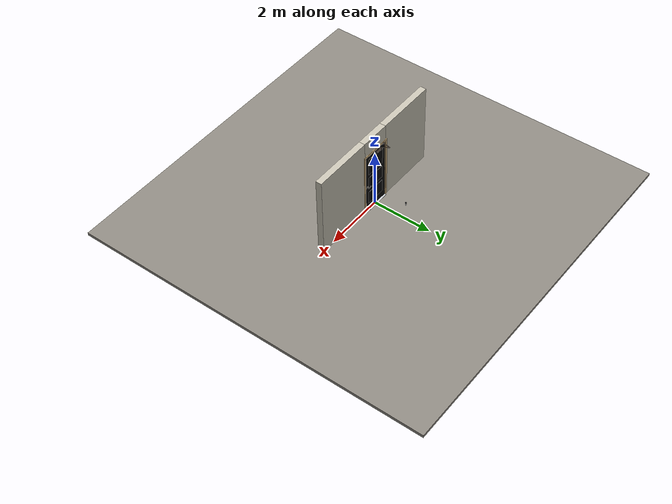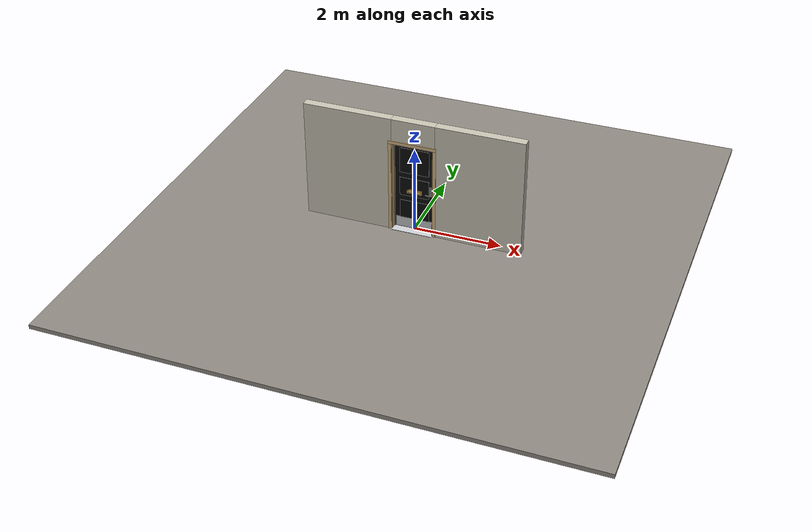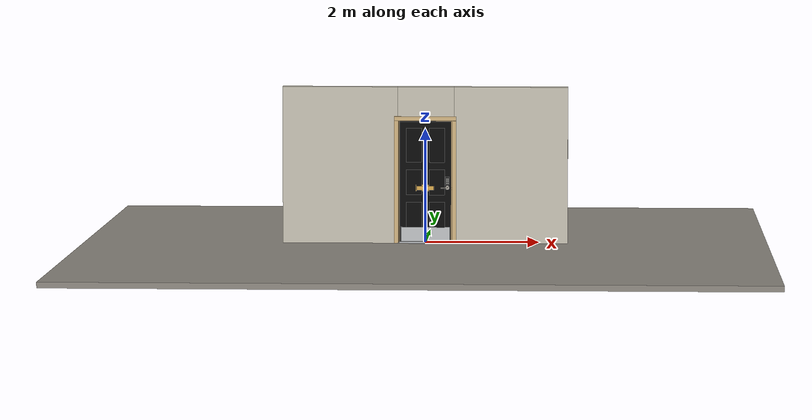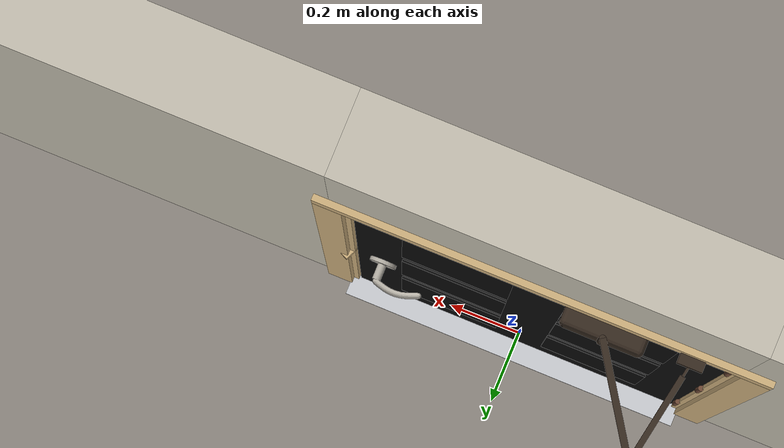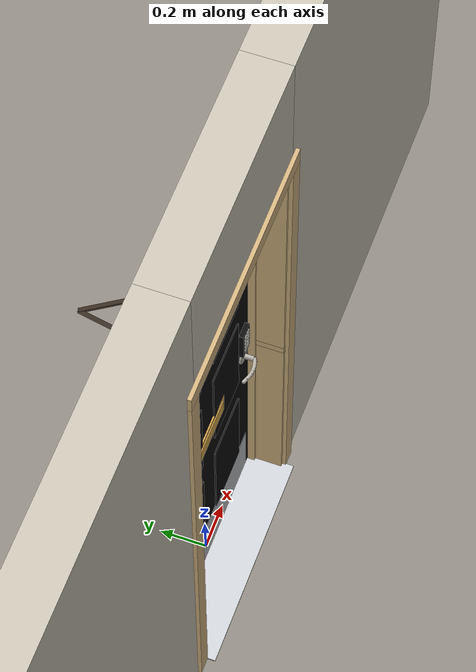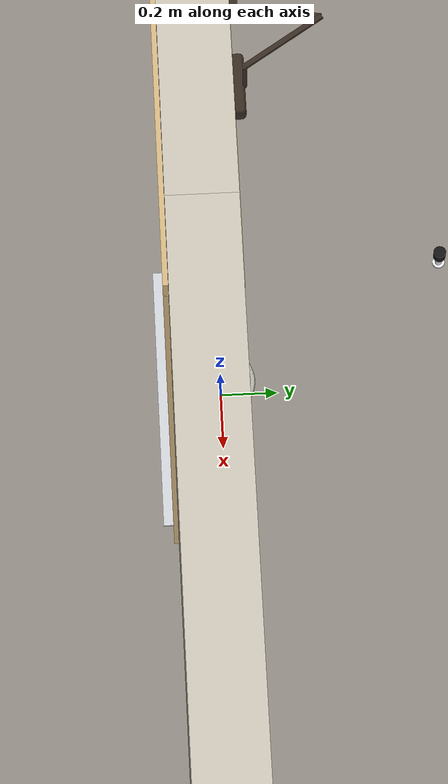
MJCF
<?xml version="1.0" ?>
<mujoco model="db0717_swing_single_full">
  <compiler angle="radian" meshdir="../../hardware" texturedir="../../textures" autolimits="true" inertiafromgeom="false"/>
  <option timestep="0.002" integrator="implicitfast" cone="elliptic" impratio="10" noslip_iterations="3">
    <flag multiccd="enable"/>
  </option>
  <size memory="16M"/>
  <default>
    <geom condim="4" solref="0.005 1" solimp="0.95 0.99 0.001"/>
    <joint solreflimit="0.005 1" solimplimit="0.95 0.99 0.001"/>
    <tendon solreflimit="0.005 1"/>
    <equality solref="0.002 1"/>
  </default>
  <visual>
    <headlight ambient="0.4 0.4 0.4" diffuse="0.7 0.7 0.7" specular="0.2 0.2 0.2"/>
    <quality shadowsize="4096"/>
    <map znear="0.01" zfar="60"/>
  </visual>
  <asset>
    <mesh name="closer_body_78399c60f5" file="closer_body_78399c60f5.obj"/>
    <mesh name="hinge_e22b26c0c1" file="hinge_e22b26c0c1.obj"/>
    <mesh name="hinge_jamb_e1d088f8dc" file="hinge_jamb_e1d088f8dc.obj"/>
    <mesh name="keypad_body_3b2d063948" file="keypad_body_3b2d063948.obj"/>
    <mesh name="lever_a61139b160" file="lever_a61139b160.obj"/>
    <mesh name="peephole_f829311a59" file="peephole_f829311a59.obj"/>
    <material name="mat_floor" rgba="0.55 0.53 0.5 1" specular="0.2" shininess="0.15" reflectance="0"/>
    <material name="mat_wall" rgba="0.78 0.76 0.7 1" specular="0.2" shininess="0.1" reflectance="0"/>
    <material name="mat_leaf" rgba="0.04 0.04 0.04 1" specular="0.2" shininess="0.57" reflectance="0"/>
    <material name="mat_leaf_panel" rgba="0.037 0.037 0.037 1" specular="0.2" shininess="0.57" reflectance="0"/>
    <material name="mat_hinge" rgba="0.45 0.3 0.22 1" specular="0.5" shininess="0.1" reflectance="0.2"/>
    <material name="mat_op_nickel_satin" rgba="0.72 0.7 0.66 1" specular="0.8" shininess="0.65" reflectance="0.4"/>
    <material name="mat_trim" rgba="0.85 0.66 0.3 1" specular="0.8" shininess="0.75" reflectance="0.4"/>
    <material name="mat_keypad" rgba="0.05 0.05 0.05 1" specular="0.38" shininess="0.3" reflectance="0.12"/>
    <material name="mat_key" rgba="0.85 0.85 0.82 1" specular="0.2" shininess="0.5" reflectance="0"/>
    <material name="mat_bolt" rgba="0.85 0.66 0.3 1" specular="0.8" shininess="0.75" reflectance="0.4"/>
    <material name="mat_frame" rgba="0.82 0.7 0.5 1" specular="0.2" shininess="0.45" reflectance="0"/>
    <material name="mat_seal" rgba="0.1 0.1 0.1 1" specular="0.2" shininess="0.1" reflectance="0"/>
    <material name="mat_threshold" rgba="0.8 0.81 0.83 1" specular="0.8" shininess="0.6" reflectance="0.4"/>
    <material name="mat_closer" rgba="0.22 0.17 0.13 1" specular="0.8" shininess="0.6" reflectance="0.4"/>
    <material name="mat_kick" rgba="0.75 0.76 0.77 1" specular="0.8" shininess="0.65" reflectance="0.4"/>
    <material name="mat_peephole" rgba="0.85 0.66 0.3 1" specular="0.8" shininess="0.75" reflectance="0.4"/>
    <material name="mat_mailslot" rgba="0.85 0.66 0.3 1" specular="0.8" shininess="0.75" reflectance="0.4"/>
    <material name="mat_bumper_stop" rgba="0.08 0.08 0.08 1" specular="0.2" shininess="0.1" reflectance="0"/>
    <material name="mat_stop_base" rgba="0.9 0.9 0.92 1" specular="0.8" shininess="0.9" reflectance="0.4"/>
    <texture name="skybox" type="skybox" builtin="gradient" rgb1="0.6 0.7 0.85" rgb2="0.9 0.92 0.95" width="256" height="256"/>
  </asset>
  <worldbody>
    <light name="sun" pos="1.5 -2.5 4" dir="-0.3 0.5 -0.8" directional="true" diffuse="0.8 0.8 0.8" specular="0.3 0.3 0.3" castshadow="true"/>
    <light name="fill" pos="-1.5 2.5 3" dir="0.3 -0.5 -0.7" directional="true" diffuse="0.35 0.35 0.4" castshadow="false"/>
    <camera name="robot_view" pos="0 -2.708813 1.812087" xyaxes="1 0 0 0 0.26963 0.962964" fovy="52"/>
    <camera name="far_view" pos="0 2.566812 1.812087" xyaxes="-1 0 0 0 -0.26963 0.962964" fovy="52"/>
    <camera name="iso" pos="2.004737 -2.286763 2.234138" xyaxes="0.741536 0.670913 0 -0.242917 0.268487 0.932151" fovy="46"/>
    <camera name="detail_handle" pos="0.4769 -0.723 1.245" xyaxes="0.97561 0.219512 0 -0.070934 0.315262 0.94635" fovy="38"/>
    <geom name="floor" type="box" size="6 6 0.05" pos="0 0 -0.05" material="mat_floor" group="0" contype="1" conaffinity="1" friction="0.8 0.005 0.0001" density="2400"/>
    <geom name="wall_left" type="box" size="1.01025 0.1 1.3735" pos="-1.48975 -0.071 1.3735" material="mat_wall" group="0" contype="1" conaffinity="1" friction="0.6 0.005 0.0001" density="800"/>
    <geom name="wall_right" type="box" size="0.99525 0.1 1.3735" pos="1.50475 -0.071 1.3735" material="mat_wall" group="0" contype="1" conaffinity="1" friction="0.6 0.005 0.0001" density="800"/>
    <geom name="wall_header" type="box" size="0.4945 0.1 0.2755" pos="0.015 -0.071 2.4715" material="mat_wall" group="0" contype="1" conaffinity="1" friction="0.6 0.005 0.0001" density="800"/>
    <geom name="hinge_0_jamb" type="mesh" mesh="hinge_jamb_e1d088f8dc" pos="-0.4575 0.029 0.259" quat="0 1 0 0" material="mat_hinge" group="1" contype="0" conaffinity="0" density="7850"/>
    <geom name="hinge_1_jamb" type="mesh" mesh="hinge_jamb_e1d088f8dc" pos="-0.4575 0.029 1.076" quat="0 1 0 0" material="mat_hinge" group="1" contype="0" conaffinity="0" density="7850"/>
    <geom name="hinge_2_jamb" type="mesh" mesh="hinge_jamb_e1d088f8dc" pos="-0.4575 0.029 1.963" quat="0 1 0 0" material="mat_hinge" group="1" contype="0" conaffinity="0" density="7850"/>
    <geom name="jamb_hinge" type="box" size="0.0095 0.1 1.0735" pos="-0.47 -0.071 1.0735" material="mat_frame" group="0" contype="1" conaffinity="1" friction="0.6 0.005 0.0001" density="400"/>
    <geom name="strike_965_wall_n" type="box" size="0.0245 0.081575 0.0167" pos="0.485 -0.089425 0.965" material="mat_frame" group="0" contype="1" conaffinity="1" friction="0.6 0.005 0.0001" density="400"/>
    <geom name="strike_965_wall_p" type="box" size="0.0245 0.008 0.0167" pos="0.485 0.01585 0.965" material="mat_frame" group="0" contype="1" conaffinity="1" friction="0.6 0.005 0.0001" density="400"/>
    <geom name="strike_965_ramp" type="box" size="0.0245 0.01649 0.0167" pos="0.489636 0.028673 0.965" quat="0.977148 0 0 -0.212558" material="mat_frame" group="0" contype="1" conaffinity="1" friction="0.12 0.005 0.0001" density="400"/>
    <geom name="strike_965_back" type="box" size="0.01615 0.00785 0.0167" pos="0.49335 0 0.965" material="mat_frame" group="0" contype="1" conaffinity="1" friction="0.6 0.005 0.0001" density="400"/>
    <geom name="jamb_strike_0" type="box" size="0.0245 0.1 0.47415" pos="0.485 -0.071 0.47415" material="mat_frame" group="0" contype="1" conaffinity="1" friction="0.6 0.005 0.0001" density="400"/>
    <geom name="jamb_strike_1" type="box" size="0.0245 0.1 0.58265" pos="0.485 -0.071 1.56435" material="mat_frame" group="0" contype="1" conaffinity="1" friction="0.6 0.005 0.0001" density="400"/>
    <geom name="jamb_head" type="box" size="0.4945 0.1 0.0095" pos="0.015 -0.071 2.1565" material="mat_frame" group="0" contype="1" conaffinity="1" friction="0.6 0.005 0.0001" density="400"/>
    <geom name="head_stud" type="box" size="0.4945 0.1 0.015" pos="0.015 -0.071 2.181" material="mat_wall" group="0" contype="1" conaffinity="1" friction="0.6 0.005 0.0001" density="500"/>
    <geom name="stop_hinge" type="box" size="0.0055 0.016 1.0735" pos="-0.455 -0.0385 1.0735" material="mat_frame" group="0" contype="1" conaffinity="1" friction="0.6 0.005 0.0001" density="400"/>
    <geom name="stop_strike" type="box" size="0.0055 0.016 1.0735" pos="0.455 -0.0385 1.0735" material="mat_frame" group="0" contype="1" conaffinity="1" friction="0.6 0.005 0.0001" density="400"/>
    <geom name="stop_head" type="box" size="0.4605 0.016 0.0055" pos="0 -0.0385 2.1415" material="mat_frame" group="0" contype="1" conaffinity="1" friction="0.6 0.005 0.0001" density="400"/>
    <geom name="seal_hinge" type="box" size="0.004 0.002 1.0735" pos="-0.4575 -0.024 1.0735" material="mat_seal" group="1" contype="0" conaffinity="0" density="1100"/>
    <geom name="seal_strike" type="box" size="0.004 0.002 1.0735" pos="0.4575 -0.024 1.0735" material="mat_seal" group="1" contype="0" conaffinity="0" density="1100"/>
    <geom name="seal_head" type="box" size="0.4405 0.002 0.008" pos="0 -0.024 2.135" material="mat_seal" group="1" contype="0" conaffinity="0" density="1100"/>
    <geom name="casing_l_n" type="box" size="0.035 0.008 1.083" pos="-0.5095 -0.179 1.0735" material="mat_frame" group="2" contype="0" conaffinity="0" density="400"/>
    <geom name="casing_r_n" type="box" size="0.035 0.008 1.083" pos="0.5095 -0.179 1.0735" material="mat_frame" group="2" contype="0" conaffinity="0" density="400"/>
    <geom name="casing_h_n" type="box" size="0.5445 0.008 0.035" pos="0 -0.179 2.196" material="mat_frame" group="2" contype="0" conaffinity="0" density="400"/>
    <geom name="casing_l_p" type="box" size="0.035 0.008 1.083" pos="-0.5095 0.037 1.0735" material="mat_frame" group="2" contype="0" conaffinity="0" density="400"/>
    <geom name="casing_r_p" type="box" size="0.035 0.008 1.083" pos="0.5095 0.037 1.0735" material="mat_frame" group="2" contype="0" conaffinity="0" density="400"/>
    <geom name="casing_h_p" type="box" size="0.5445 0.008 0.035" pos="0 0.037 2.196" material="mat_frame" group="2" contype="0" conaffinity="0" density="400"/>
    <geom name="threshold" type="box" size="0.4795 0.15 0.004" pos="0 -0.071 0.004" material="mat_threshold" group="0" contype="1" conaffinity="1" friction="0.6 0.005 0.0001" density="2700"/>
    <geom name="closer_bracket" type="box" size="0.03 0.012 0.014" pos="-0.3605 0.057 2.177" material="mat_closer" group="1" contype="0" conaffinity="0" density="2700"/>
    <geom name="door_stop_base" type="cylinder" size="0.022 0.003" pos="-0.4735 0.8059 0.003" material="mat_stop_base" group="0" contype="1" conaffinity="1" friction="0.6 0.005 0.0001" density="7850"/>
    <geom name="door_stop_post" type="cylinder" size="0.012 0.0245" pos="-0.4735 0.8059 0.0305" material="mat_stop_base" group="0" contype="1" conaffinity="1" friction="0.6 0.005 0.0001" density="7850"/>
    <geom name="door_stop_bumper" type="cylinder" size="0.022 0.02" pos="-0.4735 0.8059 0.075" material="mat_bumper_stop" group="0" contype="1" conaffinity="1" friction="0.6 0.005 0.0001" density="1100"/>
    <site name="approach_point" pos="0 -1.5 0" quat="1 0 0 0" size="0.05" rgba="0.2 0.9 0.2 0.5" group="4"/>
    <site name="goal_point" pos="0 1.5 0" quat="1 0 0 0" size="0.05" rgba="0.2 0.9 0.2 0.5" group="4"/>
    <site name="door_plane_center" pos="0 0 1.0735" quat="1 0 0 0" size="0.02" rgba="0.2 0.9 0.2 0.5" group="4"/>
    <body name="leaf" pos="-0.4605 0 0">
      <inertial pos="0.434482 0.003247 1.116168" mass="25.95412" quat="-0.479686 0.49626 0.512217 0.511138" diaginertia="1.640321458 12.212032511 13.829820152"/>
      <joint name="leaf_hinge" type="hinge" axis="0 0 1" pos="0.003 0.029 0" limited="true" range="0 1.570796" solreflimit="0.02 1" damping="6.268966" frictionloss="3.705652" stiffness="9.135494" springref="-1.778776" armature="0.02"/>
      <geom name="leaf_slab" type="box" size="0.457 0.022 1.067" pos="0.46 0 1.076" material="mat_leaf" group="0" contype="1" conaffinity="1" friction="0.4 0.005 0.0001" density="1"/>
      <geom name="leaf_panel_0_n" type="box" size="0.13573 0.003 0.221884" pos="0.25927 -0.025 0.485624" material="mat_leaf_panel" group="1" contype="0" conaffinity="0" density="1"/>
      <geom name="leaf_panel_0_p" type="box" size="0.13573 0.003 0.221884" pos="0.25927 0.025 0.485624" material="mat_leaf_panel" group="1" contype="0" conaffinity="0" density="1"/>
      <geom name="leaf_panel_1_n" type="box" size="0.13573 0.003 0.221884" pos="0.66073 -0.025 0.485624" material="mat_leaf_panel" group="1" contype="0" conaffinity="0" density="1"/>
      <geom name="leaf_panel_1_p" type="box" size="0.13573 0.003 0.221884" pos="0.66073 0.025 0.485624" material="mat_leaf_panel" group="1" contype="0" conaffinity="0" density="1"/>
      <geom name="leaf_panel_2_n" type="box" size="0.13573 0.003 0.221884" pos="0.25927 -0.025 1.059392" material="mat_leaf_panel" group="1" contype="0" conaffinity="0" density="1"/>
      <geom name="leaf_panel_2_p" type="box" size="0.13573 0.003 0.221884" pos="0.25927 0.025 1.059392" material="mat_leaf_panel" group="1" contype="0" conaffinity="0" density="1"/>
      <geom name="leaf_panel_3_n" type="box" size="0.13573 0.003 0.221884" pos="0.66073 -0.025 1.059392" material="mat_leaf_panel" group="1" contype="0" conaffinity="0" density="1"/>
      <geom name="leaf_panel_3_p" type="box" size="0.13573 0.003 0.221884" pos="0.66073 0.025 1.059392" material="mat_leaf_panel" group="1" contype="0" conaffinity="0" density="1"/>
      <geom name="leaf_panel_4_n" type="box" size="0.13573 0.003 0.302512" pos="0.25927 -0.025 1.713788" material="mat_leaf_panel" group="1" contype="0" conaffinity="0" density="1"/>
      <geom name="leaf_panel_4_p" type="box" size="0.13573 0.003 0.302512" pos="0.25927 0.025 1.713788" material="mat_leaf_panel" group="1" contype="0" conaffinity="0" density="1"/>
      <geom name="leaf_panel_5_n" type="box" size="0.13573 0.003 0.302512" pos="0.66073 -0.025 1.713788" material="mat_leaf_panel" group="1" contype="0" conaffinity="0" density="1"/>
      <geom name="leaf_panel_5_p" type="box" size="0.13573 0.003 0.302512" pos="0.66073 0.025 1.713788" material="mat_leaf_panel" group="1" contype="0" conaffinity="0" density="1"/>
      <geom name="hinge_0" type="mesh" mesh="hinge_e22b26c0c1" pos="0.003 0.029 0.259" quat="0 1 0 0" material="mat_hinge" group="1" contype="0" conaffinity="0" density="7850"/>
      <geom name="hinge_1" type="mesh" mesh="hinge_e22b26c0c1" pos="0.003 0.029 1.076" quat="0 1 0 0" material="mat_hinge" group="1" contype="0" conaffinity="0" density="7850"/>
      <geom name="hinge_2" type="mesh" mesh="hinge_e22b26c0c1" pos="0.003 0.029 1.963" quat="0 1 0 0" material="mat_hinge" group="1" contype="0" conaffinity="0" density="7850"/>
      <geom name="leaf_keypad_body" type="mesh" mesh="keypad_body_3b2d063948" pos="0.847 -0.022 1.085" quat="0.707107 0.707107 0 0" material="mat_keypad" group="0" contype="1" conaffinity="1" friction="0.6 0.005 0.0001" density="2000"/>
      <geom name="leaf_latch_bolt_faceplate" type="box" size="0.0006 0.01235 0.0267" pos="0.9164 0 0.965" material="mat_bolt" group="1" contype="0" conaffinity="0" density="8500"/>
      <geom name="closer_body" type="mesh" mesh="closer_body_78399c60f5" pos="0.3 0.022 2.054" quat="-0.707107 0.707107 0 0" material="mat_closer" group="1" contype="0" conaffinity="0" density="2000"/>
      <geom name="closer_body_col" type="box" size="0.1 0.03 0.025" pos="0.3 0.052 2.054" material="mat_closer" group="3" contype="1" conaffinity="1" rgba="0.8 0.3 0.3 0.25" friction="0.6 0.005 0.0001" density="2000"/>
      <geom name="closer_pinion_shaft" type="cylinder" size="0.008 0.0615" pos="0.3 0.08 2.1155" material="mat_closer" group="1" contype="0" conaffinity="0" density="2700"/>
      <geom name="kick_plate_n" type="box" size="0.427 0.0008 0.125" pos="0.46 -0.0228 0.144" material="mat_kick" group="2" contype="0" conaffinity="0" density="7900"/>
      <geom name="peephole" type="mesh" mesh="peephole_f829311a59" pos="0.46 -0.022 1.509" quat="0.707107 0.707107 0 0" material="mat_peephole" group="2" contype="0" conaffinity="0" density="8500"/>
      <geom name="mail_slot_frame" type="box" size="0.17 0.003 0.055" pos="0.46 -0.025 0.959" material="mat_mailslot" group="2" contype="0" conaffinity="0" density="8500"/>
      <site name="leaf_edge_mid" pos="0.917 0 1.067" quat="1 0 0 0" size="0.02" rgba="0.2 0.9 0.2 0.5" group="4"/>
      <body name="leaf_handle" pos="0.847 0 0.965">
        <inertial pos="-0.022132 0.050687 0" mass="0.463269" quat="0.312008 0 0 0.950079" diaginertia="0.000227859 0.000847742 0.000992066"/>
        <joint name="leaf_handle_hinge" type="hinge" axis="0 -1 0" limited="true" range="0 0.87" damping="0.208392" frictionloss="0.052" stiffness="1" springref="-0.35" armature="0.01"/>
        <geom name="leaf_handle_spindle" type="cylinder" size="0.006 0.03" pos="0 0 0" quat="0.707107 -0.707107 0 0" material="mat_op_nickel_satin" group="1" contype="0" conaffinity="0" density="7850"/>
        <geom name="leaf_handle_lever_p" type="mesh" mesh="lever_a61139b160" pos="0 0.022 0" quat="-0.707107 0.707107 0 0" material="mat_op_nickel_satin" group="1" contype="0" conaffinity="0" density="3000"/>
        <geom name="leaf_handle_lever_col_p" type="capsule" size="0.008 0.048" pos="-0.056 0.077 0" quat="0.707107 0 -0.707107 0" material="mat_op_nickel_satin" group="3" contype="1" conaffinity="1" rgba="0.8 0.3 0.3 0.25" friction="0.7 0.01 0.0001" density="3000"/>
        <geom name="leaf_handle_hub_col_p" type="cylinder" size="0.012 0.022" pos="0 0.052 0" quat="0.707107 -0.707107 0 0" material="mat_op_nickel_satin" group="3" contype="1" conaffinity="1" rgba="0.8 0.3 0.3 0.25" friction="0.6 0.005 0.0001" density="3000"/>
        <site name="leaf_handle_grip_p" pos="-0.0896 0.077 0" quat="1 0 0 0" size="0.012" rgba="0.2 0.9 0.2 0.5" group="4"/>
      </body>
      <body name="leaf_keypad_key_1" pos="0.834 -0.042 1.133">
        <inertial pos="0 -0.0015 0" mass="0.001008" quat="0 0 0.707107 0.707107" diaginertia="0.000000017 0.000000034 0.00000005"/>
        <joint name="leaf_keypad_key_1_slide" type="slide" axis="0 1 0" limited="true" range="0 0.0015" damping="14" frictionloss="0.05" stiffness="1000" springref="-0.0015" armature="0.1"/>
        <geom name="leaf_keypad_key_1_geom" type="box" size="0.01 0.0015 0.007" pos="0 -0.0015 0" material="mat_key" group="0" contype="1" conaffinity="1" friction="0.6 0.005 0.0001" density="1200"/>
        <site name="leaf_keypad_key_1_press" pos="0 -0.005 0" quat="1 0 0 0" size="0.008" rgba="0.2 0.9 0.2 0.5" group="4"/>
      </body>
      <body name="leaf_keypad_key_2" pos="0.86 -0.042 1.133">
        <inertial pos="0 -0.0015 0" mass="0.001008" quat="0 0 0.707107 0.707107" diaginertia="0.000000017 0.000000034 0.00000005"/>
        <joint name="leaf_keypad_key_2_slide" type="slide" axis="0 1 0" limited="true" range="0 0.0015" damping="14" frictionloss="0.05" stiffness="1000" springref="-0.0015" armature="0.1"/>
        <geom name="leaf_keypad_key_2_geom" type="box" size="0.01 0.0015 0.007" pos="0 -0.0015 0" material="mat_key" group="0" contype="1" conaffinity="1" friction="0.6 0.005 0.0001" density="1200"/>
        <site name="leaf_keypad_key_2_press" pos="0 -0.005 0" quat="1 0 0 0" size="0.008" rgba="0.2 0.9 0.2 0.5" group="4"/>
      </body>
      <body name="leaf_keypad_key_3" pos="0.834 -0.042 1.109">
        <inertial pos="0 -0.0015 0" mass="0.001008" quat="0 0 0.707107 0.707107" diaginertia="0.000000017 0.000000034 0.00000005"/>
        <joint name="leaf_keypad_key_3_slide" type="slide" axis="0 1 0" limited="true" range="0 0.0015" damping="14" frictionloss="0.05" stiffness="1000" springref="-0.0015" armature="0.1"/>
        <geom name="leaf_keypad_key_3_geom" type="box" size="0.01 0.0015 0.007" pos="0 -0.0015 0" material="mat_key" group="0" contype="1" conaffinity="1" friction="0.6 0.005 0.0001" density="1200"/>
        <site name="leaf_keypad_key_3_press" pos="0 -0.005 0" quat="1 0 0 0" size="0.008" rgba="0.2 0.9 0.2 0.5" group="4"/>
      </body>
      <body name="leaf_keypad_key_4" pos="0.86 -0.042 1.109">
        <inertial pos="0 -0.0015 0" mass="0.001008" quat="0 0 0.707107 0.707107" diaginertia="0.000000017 0.000000034 0.00000005"/>
        <joint name="leaf_keypad_key_4_slide" type="slide" axis="0 1 0" limited="true" range="0 0.0015" damping="14" frictionloss="0.05" stiffness="1000" springref="-0.0015" armature="0.1"/>
        <geom name="leaf_keypad_key_4_geom" type="box" size="0.01 0.0015 0.007" pos="0 -0.0015 0" material="mat_key" group="0" contype="1" conaffinity="1" friction="0.6 0.005 0.0001" density="1200"/>
        <site name="leaf_keypad_key_4_press" pos="0 -0.005 0" quat="1 0 0 0" size="0.008" rgba="0.2 0.9 0.2 0.5" group="4"/>
      </body>
      <body name="leaf_keypad_key_5" pos="0.834 -0.042 1.085">
        <inertial pos="0 -0.0015 0" mass="0.001008" quat="0 0 0.707107 0.707107" diaginertia="0.000000017 0.000000034 0.00000005"/>
        <joint name="leaf_keypad_key_5_slide" type="slide" axis="0 1 0" limited="true" range="0 0.0015" damping="14" frictionloss="0.05" stiffness="1000" springref="-0.0015" armature="0.1"/>
        <geom name="leaf_keypad_key_5_geom" type="box" size="0.01 0.0015 0.007" pos="0 -0.0015 0" material="mat_key" group="0" contype="1" conaffinity="1" friction="0.6 0.005 0.0001" density="1200"/>
        <site name="leaf_keypad_key_5_press" pos="0 -0.005 0" quat="1 0 0 0" size="0.008" rgba="0.2 0.9 0.2 0.5" group="4"/>
      </body>
      <body name="leaf_keypad_key_6" pos="0.86 -0.042 1.085">
        <inertial pos="0 -0.0015 0" mass="0.001008" quat="0 0 0.707107 0.707107" diaginertia="0.000000017 0.000000034 0.00000005"/>
        <joint name="leaf_keypad_key_6_slide" type="slide" axis="0 1 0" limited="true" range="0 0.0015" damping="14" frictionloss="0.05" stiffness="1000" springref="-0.0015" armature="0.1"/>
        <geom name="leaf_keypad_key_6_geom" type="box" size="0.01 0.0015 0.007" pos="0 -0.0015 0" material="mat_key" group="0" contype="1" conaffinity="1" friction="0.6 0.005 0.0001" density="1200"/>
        <site name="leaf_keypad_key_6_press" pos="0 -0.005 0" quat="1 0 0 0" size="0.008" rgba="0.2 0.9 0.2 0.5" group="4"/>
      </body>
      <body name="leaf_keypad_key_7" pos="0.834 -0.042 1.061">
        <inertial pos="0 -0.0015 0" mass="0.001008" quat="0 0 0.707107 0.707107" diaginertia="0.000000017 0.000000034 0.00000005"/>
        <joint name="leaf_keypad_key_7_slide" type="slide" axis="0 1 0" limited="true" range="0 0.0015" damping="14" frictionloss="0.05" stiffness="1000" springref="-0.0015" armature="0.1"/>
        <geom name="leaf_keypad_key_7_geom" type="box" size="0.01 0.0015 0.007" pos="0 -0.0015 0" material="mat_key" group="0" contype="1" conaffinity="1" friction="0.6 0.005 0.0001" density="1200"/>
        <site name="leaf_keypad_key_7_press" pos="0 -0.005 0" quat="1 0 0 0" size="0.008" rgba="0.2 0.9 0.2 0.5" group="4"/>
      </body>
      <body name="leaf_keypad_key_8" pos="0.86 -0.042 1.061">
        <inertial pos="0 -0.0015 0" mass="0.001008" quat="0 0 0.707107 0.707107" diaginertia="0.000000017 0.000000034 0.00000005"/>
        <joint name="leaf_keypad_key_8_slide" type="slide" axis="0 1 0" limited="true" range="0 0.0015" damping="14" frictionloss="0.05" stiffness="1000" springref="-0.0015" armature="0.1"/>
        <geom name="leaf_keypad_key_8_geom" type="box" size="0.01 0.0015 0.007" pos="0 -0.0015 0" material="mat_key" group="0" contype="1" conaffinity="1" friction="0.6 0.005 0.0001" density="1200"/>
        <site name="leaf_keypad_key_8_press" pos="0 -0.005 0" quat="1 0 0 0" size="0.008" rgba="0.2 0.9 0.2 0.5" group="4"/>
      </body>
      <body name="leaf_keypad_key_9" pos="0.834 -0.042 1.037">
        <inertial pos="0 -0.0015 0" mass="0.001008" quat="0 0 0.707107 0.707107" diaginertia="0.000000017 0.000000034 0.00000005"/>
        <joint name="leaf_keypad_key_9_slide" type="slide" axis="0 1 0" limited="true" range="0 0.0015" damping="14" frictionloss="0.05" stiffness="1000" springref="-0.0015" armature="0.1"/>
        <geom name="leaf_keypad_key_9_geom" type="box" size="0.01 0.0015 0.007" pos="0 -0.0015 0" material="mat_key" group="0" contype="1" conaffinity="1" friction="0.6 0.005 0.0001" density="1200"/>
        <site name="leaf_keypad_key_9_press" pos="0 -0.005 0" quat="1 0 0 0" size="0.008" rgba="0.2 0.9 0.2 0.5" group="4"/>
      </body>
      <body name="leaf_keypad_key_0" pos="0.86 -0.042 1.037">
        <inertial pos="0 -0.0015 0" mass="0.001008" quat="0 0 0.707107 0.707107" diaginertia="0.000000017 0.000000034 0.00000005"/>
        <joint name="leaf_keypad_key_0_slide" type="slide" axis="0 1 0" limited="true" range="0 0.0015" damping="14" frictionloss="0.05" stiffness="1000" springref="-0.0015" armature="0.1"/>
        <geom name="leaf_keypad_key_0_geom" type="box" size="0.01 0.0015 0.007" pos="0 -0.0015 0" material="mat_key" group="0" contype="1" conaffinity="1" friction="0.6 0.005 0.0001" density="1200"/>
        <site name="leaf_keypad_key_0_press" pos="0 -0.005 0" quat="1 0 0 0" size="0.008" rgba="0.2 0.9 0.2 0.5" group="4"/>
      </body>
      <body name="leaf_handle_out" pos="0.847 0 0.965">
        <inertial pos="-0.025007 -0.057273 0" mass="0.41" quat="-0.235955 0 0 0.971764" diaginertia="0.000156759 0.000717302 0.000791484"/>
        <joint name="leaf_handle_out_hinge" type="hinge" axis="0 -1 0" limited="true" range="0 0.09" damping="0.208382" frictionloss="0.052" stiffness="1" springref="-0.35" armature="0.01"/>
        <geom name="leaf_handle_out_lever_n" type="mesh" mesh="lever_a61139b160" pos="0 -0.022 0" quat="0.707107 0.707107 0 0" material="mat_op_nickel_satin" group="1" contype="0" conaffinity="0" density="3000"/>
        <geom name="leaf_handle_out_lever_col_n" type="capsule" size="0.008 0.048" pos="-0.056 -0.077 0" quat="0.707107 0 -0.707107 0" material="mat_op_nickel_satin" group="3" contype="1" conaffinity="1" rgba="0.8 0.3 0.3 0.25" friction="0.7 0.01 0.0001" density="3000"/>
        <geom name="leaf_handle_out_hub_col_n" type="cylinder" size="0.012 0.022" pos="0 -0.052 0" quat="0.707107 -0.707107 0 0" material="mat_op_nickel_satin" group="3" contype="1" conaffinity="1" rgba="0.8 0.3 0.3 0.25" friction="0.6 0.005 0.0001" density="3000"/>
        <site name="leaf_handle_out_grip_n" pos="-0.0896 -0.077 0" quat="1 0 0 0" size="0.012" rgba="0.2 0.9 0.2 0.5" group="4"/>
      </body>
      <body name="leaf_latch_bolt" pos="0.917 0 0.965">
        <inertial pos="-0.00865 0 0" mass="0.041419" quat="0.92388 -0.382683 0 0" diaginertia="0.000000798 0.000005598 0.000005598"/>
        <joint name="leaf_latch_bolt_slide" type="slide" axis="-1 0 0" limited="true" range="0 0.0127" damping="2" frictionloss="0.3" stiffness="300" springref="-0.008333" armature="0.1"/>
        <geom name="leaf_latch_bolt_capsule" type="capsule" size="0.00635 0.015" pos="-0.00865 0 0" quat="0.707107 0 0.707107 0" material="mat_bolt" group="0" contype="1" conaffinity="1" friction="0.2 0.005 0.0001" density="8500"/>
      </body>
      <body name="closer_arm_main" pos="0.3 0.08 2.177" quat="0.472212 0 0 0.881485">
        <inertial pos="0.14 0 0" mass="0.12096" quat="1 0 0 0" diaginertia="0.000003588 0.00079128 0.000792852"/>
        <joint name="closer_pinion" type="hinge" axis="0 0 1" limited="false" damping="0.01" armature="0.002"/>
        <geom name="closer_arm_main_geom" type="box" size="0.14 0.008 0.005" pos="0.14 0 0" material="mat_closer" group="1" contype="0" conaffinity="0" density="2700"/>
        <body name="closer_arm_fore" pos="0.28 0 0" quat="-0.371222 0 0 -0.928544">
          <inertial pos="0.128088 0 0" mass="0.076531" quat="1 0 0 0" diaginertia="0.000001771 0.000437665 0.000438201"/>
          <joint name="closer_elbow" type="hinge" axis="0 0 1" limited="false" damping="0.01" armature="0.002"/>
          <geom name="closer_arm_fore_geom" type="box" size="0.1125 0.007 0.004" pos="0.1125 0 0" material="mat_closer" group="1" contype="0" conaffinity="0" density="2700"/>
          <geom name="closer_fore_neck" type="box" size="0.0175 0.003 0.003" pos="0.2425 0 0" material="mat_closer" group="1" contype="0" conaffinity="0" density="2700"/>
          <geom name="closer_fore_pivot" type="cylinder" size="0.005 0.012" pos="0.26 0 0" material="mat_closer" group="1" contype="0" conaffinity="0" density="2700"/>
        </body>
      </body>
      <body name="mail_slot_flap" pos="0.46 -0.0305 0.994">
        <inertial pos="0 0 -0.035" mass="0.714" quat="0 0 0.707107 0.707107" diaginertia="0.000292502 0.005355952 0.00564655"/>
        <joint name="mail_slot_hinge" type="hinge" axis="1 0 0" limited="true" range="0 1.2" damping="0.01" stiffness="0.3" springref="-0.3" armature="0.002"/>
        <geom name="mail_slot_flap_geom" type="box" size="0.15 0.002 0.035" pos="0 0 -0.035" material="mat_mailslot" group="0" contype="1" conaffinity="1" friction="0.6 0.005 0.0001" density="8500"/>
      </body>
    </body>
  </worldbody>
  <tendon>
    <fixed name="leaf_latch_bolt_coupling" limited="true" range="0 10">
      <joint joint="leaf_latch_bolt_slide" coef="1"/>
      <joint joint="leaf_handle_hinge" coef="-0.015679"/>
      <joint joint="leaf_handle_out_hinge" coef="-0.015679"/>
    </fixed>
  </tendon>
  <equality>
    <connect name="closer_arm_connect" body1="closer_arm_fore" body2="world" anchor="0.26 0 0" active="true"/>
  </equality>
  <contact>
    <exclude body1="closer_arm_main" body2="leaf"/>
    <exclude body1="closer_arm_fore" body2="leaf"/>
    <exclude body1="closer_arm_main" body2="closer_arm_fore"/>
  </contact>
  <sensor>
    <jointpos name="leaf_hinge_pos" joint="leaf_hinge"/>
    <jointvel name="leaf_hinge_vel" joint="leaf_hinge"/>
    <jointpos name="leaf_handle_hinge_pos" joint="leaf_handle_hinge"/>
    <jointvel name="leaf_handle_hinge_vel" joint="leaf_handle_hinge"/>
    <jointpos name="leaf_keypad_key_1_slide_pos" joint="leaf_keypad_key_1_slide"/>
    <jointvel name="leaf_keypad_key_1_slide_vel" joint="leaf_keypad_key_1_slide"/>
    <jointpos name="leaf_keypad_key_2_slide_pos" joint="leaf_keypad_key_2_slide"/>
    <jointvel name="leaf_keypad_key_2_slide_vel" joint="leaf_keypad_key_2_slide"/>
    <jointpos name="leaf_keypad_key_3_slide_pos" joint="leaf_keypad_key_3_slide"/>
    <jointvel name="leaf_keypad_key_3_slide_vel" joint="leaf_keypad_key_3_slide"/>
    <jointpos name="leaf_keypad_key_4_slide_pos" joint="leaf_keypad_key_4_slide"/>
    <jointvel name="leaf_keypad_key_4_slide_vel" joint="leaf_keypad_key_4_slide"/>
    <jointpos name="leaf_keypad_key_5_slide_pos" joint="leaf_keypad_key_5_slide"/>
    <jointvel name="leaf_keypad_key_5_slide_vel" joint="leaf_keypad_key_5_slide"/>
    <jointpos name="leaf_keypad_key_6_slide_pos" joint="leaf_keypad_key_6_slide"/>
    <jointvel name="leaf_keypad_key_6_slide_vel" joint="leaf_keypad_key_6_slide"/>
    <jointpos name="leaf_keypad_key_7_slide_pos" joint="leaf_keypad_key_7_slide"/>
    <jointvel name="leaf_keypad_key_7_slide_vel" joint="leaf_keypad_key_7_slide"/>
    <jointpos name="leaf_keypad_key_8_slide_pos" joint="leaf_keypad_key_8_slide"/>
    <jointvel name="leaf_keypad_key_8_slide_vel" joint="leaf_keypad_key_8_slide"/>
    <jointpos name="leaf_keypad_key_9_slide_pos" joint="leaf_keypad_key_9_slide"/>
    <jointvel name="leaf_keypad_key_9_slide_vel" joint="leaf_keypad_key_9_slide"/>
    <jointpos name="leaf_keypad_key_0_slide_pos" joint="leaf_keypad_key_0_slide"/>
    <jointvel name="leaf_keypad_key_0_slide_vel" joint="leaf_keypad_key_0_slide"/>
    <jointpos name="leaf_handle_out_hinge_pos" joint="leaf_handle_out_hinge"/>
    <jointvel name="leaf_handle_out_hinge_vel" joint="leaf_handle_out_hinge"/>
    <jointpos name="leaf_latch_bolt_slide_pos" joint="leaf_latch_bolt_slide"/>
    <jointvel name="leaf_latch_bolt_slide_vel" joint="leaf_latch_bolt_slide"/>
  </sensor>
</mujoco>
